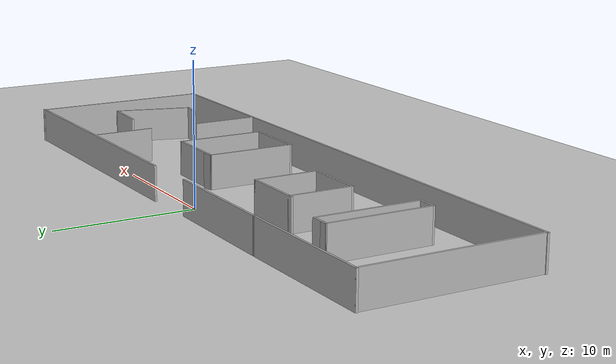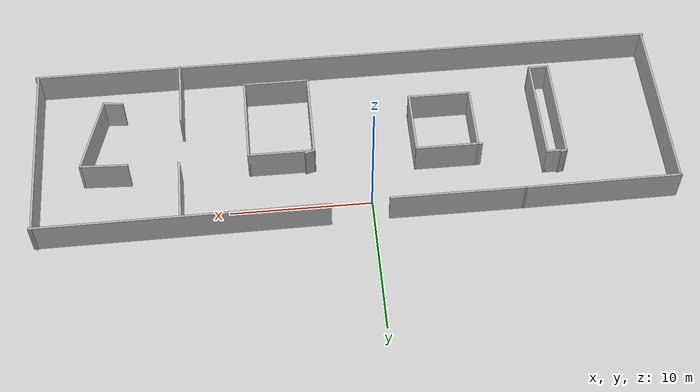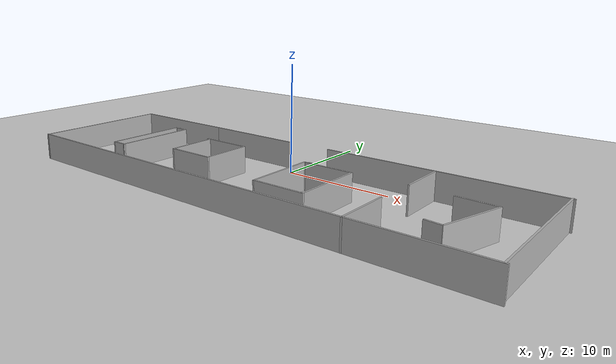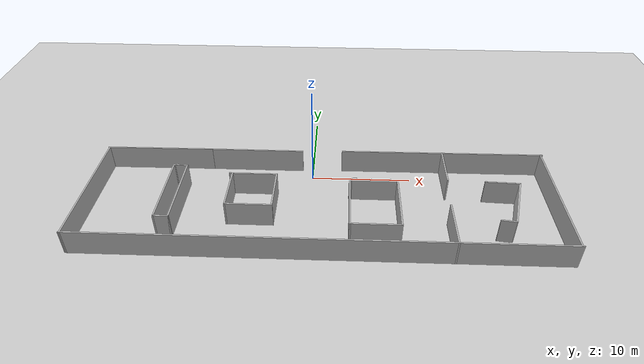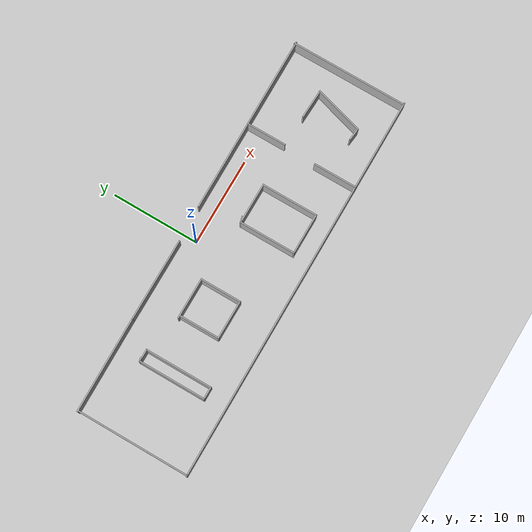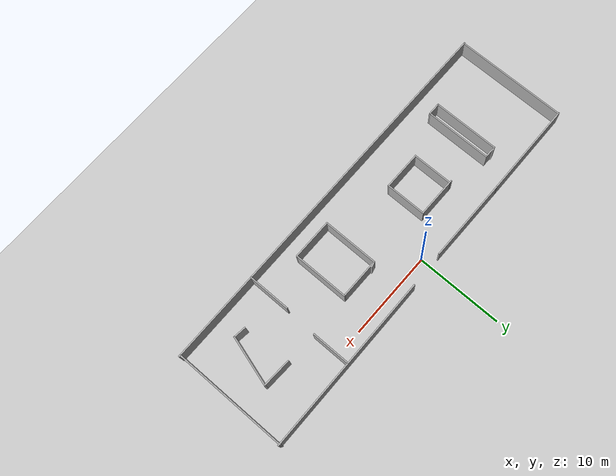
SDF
<?xml version="1.0"?>
<sdf version="1.7">
  <world name="default">
    <plugin
      filename="gz-sim-physics-system"
      name="gz::sim::systems::Physics">
    </plugin>
    <plugin
      filename="gz-sim-user-commands-system"
      name="gz::sim::systems::UserCommands">
    </plugin>
    <plugin
      filename="gz-sim-scene-broadcaster-system"
      name="gz::sim::systems::SceneBroadcaster">
    </plugin>
    <plugin
      filename="gz-sim-sensors-system"
      name="gz::sim::systems::Sensors">
      <render_engine>ogre2</render_engine>
    </plugin>
    <plugin
      filename="gz-sim-imu-system"
      name="gz::sim::systems::Imu">
    </plugin>

    <include>
      <uri>
        https://fuel.gazebosim.org/1.0/OpenRobotics/models/Ground Plane
      </uri>
    </include>

    <include>
      <uri>
        https://fuel.gazebosim.org/1.0/OpenRobotics/models/Sun
      </uri>
    </include>

    <scene>
      <shadows>false</shadows>
    </scene>

    <gui fullscreen='0'>
      <camera name='user_camera'>
        <pose frame=''>0.319654 -0.235002 9.29441 0 1.5138 0.009599</pose>
        <view_controller>orbit</view_controller>
        <projection_type>perspective</projection_type>
      </camera>
    </gui>

    <physics type="ode">
      <real_time_update_rate>1000.0</real_time_update_rate>
      <max_step_size>0.001</max_step_size>
      <real_time_factor>1</real_time_factor>
      <ode>
        <solver>
          <type>quick</type>
          <iters>150</iters>
          <precon_iters>0</precon_iters>
          <sor>1.400000</sor>
          <use_dynamic_moi_rescaling>1</use_dynamic_moi_rescaling>
        </solver>
        <constraints>
          <cfm>0.00001</cfm>
          <erp>0.2</erp>
          <contact_max_correcting_vel>2000.000000</contact_max_correcting_vel>
          <contact_surface_layer>0.01000</contact_surface_layer>
        </constraints>
      </ode>
    </physics>

    <model name='labrobotik'>
    <pose>1.05232 -4.98796 0 0 -0 0</pose>
    <link name='Wall_1'>
      <collision name='Wall_1_Collision'>
        <geometry>
          <box>
            <size>9.5 0.15 2.5</size>
          </box>
        </geometry>
        <pose>0 0 1.25 0 -0 0</pose>
      </collision>
      <visual name='Wall_1_Visual'>
        <pose>0 0 1.25 0 -0 0</pose>
        <geometry>
          <box>
            <size>9.5 0.15 2.5</size>
          </box>
        </geometry>
        <material>
         <diffuse>0.7 0.7 0.7 1</diffuse>
          <ambient>0.921569 0.807843 0.615686 1</ambient>
        </material>
        <meta>
          <layer>0</layer>
        </meta>
      </visual>
      <pose>-6.84284 6.28657 0 0 -0 0</pose>
    </link>
    <link name='Wall_10'>
      <collision name='Wall_10_Collision'>
        <geometry>
          <box>
            <size>4.75 0.15 2.5</size>
          </box>
        </geometry>
        <pose>0 0 1.25 0 -0 0</pose>
      </collision>
      <visual name='Wall_10_Visual'>
        <pose>0 0 1.25 0 -0 0</pose>
        <geometry>
          <box>
            <size>4.75 0.15 2.5</size>
          </box>
        </geometry>
        <material>
         <diffuse>0.7 0.7 0.7 1</diffuse>
          <ambient>0.921569 0.807843 0.615686 1</ambient>
        </material>
        <meta>
          <layer>0</layer>
        </meta>
      </visual>
      <pose>-4.42267 -0.012469 0 0 -0 -1.5708</pose>
    </link>
    <link name='Wall_11'>
      <collision name='Wall_11_Collision'>
        <geometry>
          <box>
            <size>4.5 0.15 2.5</size>
          </box>
        </geometry>
        <pose>0 0 1.25 0 -0 0</pose>
      </collision>
      <visual name='Wall_11_Visual'>
        <pose>0 0 1.25 0 -0 0</pose>
        <geometry>
          <box>
            <size>4.5 0.15 2.5</size>
          </box>
        </geometry>
        <material>
         <diffuse>0.7 0.7 0.7 1</diffuse>
          <ambient>0.921569 0.807843 0.615686 1</ambient>
        </material>
        <meta>
          <layer>0</layer>
        </meta>
      </visual>
      <pose>-6.59767 -2.31247 0 0 -0 3.14159</pose>
    </link>
    <link name='Wall_12'>
      <collision name='Wall_12_Collision'>
        <geometry>
          <box>
            <size>4.75 0.15 2.5</size>
          </box>
        </geometry>
        <pose>0 0 1.25 0 -0 0</pose>
      </collision>
      <visual name='Wall_12_Visual'>
        <pose>0 0 1.25 0 -0 0</pose>
        <geometry>
          <box>
            <size>4.75 0.15 2.5</size>
          </box>
        </geometry>
        <material>
         <diffuse>0.7 0.7 0.7 1</diffuse>
          <ambient>0.921569 0.807843 0.615686 1</ambient>
        </material>
        <meta>
          <layer>0</layer>
        </meta>
      </visual>
      <pose>-8.77267 -0.012469 0 0 -0 1.5708</pose>
    </link>
    <link name='Wall_14'>
      <collision name='Wall_14_Collision'>
        <geometry>
          <box>
            <size>4.5 0.15 2.5</size>
          </box>
        </geometry>
        <pose>0 0 1.25 0 -0 0</pose>
      </collision>
      <visual name='Wall_14_Visual'>
        <pose>0 0 1.25 0 -0 0</pose>
        <geometry>
          <box>
            <size>4.5 0.15 2.5</size>
          </box>
        </geometry>
        <material>
         <diffuse>0.7 0.7 0.7 1</diffuse>
          <ambient>0.921569 0.807843 0.615686 1</ambient>
        </material>
        <meta>
          <layer>0</layer>
        </meta>
      </visual>
      <pose>12.2126 4.25248 0 0 -0 -1.5708</pose>
    </link>
    <link name='Wall_16'>
      <collision name='Wall_16_Collision'>
        <geometry>
          <box>
            <size>5 0.15 2.5</size>
          </box>
        </geometry>
        <pose>0 0 1.25 0 -0 0</pose>
      </collision>
      <visual name='Wall_16_Visual'>
        <pose>0 0 1.25 0 -0 0</pose>
        <geometry>
          <box>
            <size>5 0.15 2.5</size>
          </box>
        </geometry>
        <material>
         <diffuse>0.7 0.7 0.7 1</diffuse>
          <ambient>0.921569 0.807843 0.615686 1</ambient>
        </material>
        <meta>
          <layer>0</layer>
        </meta>
      </visual>
      <pose>12.0003 -4.13458 0 0 -0 -1.5708</pose>
    </link>
    <link name='Wall_18'>
      <collision name='Wall_18_Collision'>
        <geometry>
          <box>
            <size>1.41824 0.15 2.5</size>
          </box>
        </geometry>
        <pose>0 0 1.25 0 -0 0</pose>
      </collision>
      <visual name='Wall_18_Visual'>
        <pose>0 0 1.25 0 -0 0</pose>
        <geometry>
          <box>
            <size>1.41824 0.15 2.5</size>
          </box>
        </geometry>
        <material>
         <diffuse>0.7 0.7 0.7 1</diffuse>
          <ambient>0.921569 0.807843 0.615686 1</ambient>
        </material>
        <meta>
          <layer>0</layer>
        </meta>
      </visual>
      <pose>16.8051 -3.62002 0 0 -0 -0.111816</pose>
    </link>
    <link name='Wall_19'>
      <collision name='Wall_19_Collision'>
        <geometry>
          <box>
            <size>5.82611 0.15 2.5</size>
          </box>
        </geometry>
        <pose>0 0 1.25 0 -0 0</pose>
      </collision>
      <visual name='Wall_19_Visual'>
        <pose>0 0 1.25 0 -0 0</pose>
        <geometry>
          <box>
            <size>5.82611 0.15 2.5</size>
          </box>
        </geometry>
        <material>
         <diffuse>0.7 0.7 0.7 1</diffuse>
          <ambient>0.921569 0.807843 0.615686 1</ambient>
        </material>
        <meta>
          <layer>0</layer>
        </meta>
      </visual>
      <pose>18.2843 -0.961535 0 0 -0 1.29299</pose>
    </link>
    <link name='Wall_20'>
      <collision name='Wall_20_Collision'>
        <geometry>
          <box>
            <size>3.32391 0.15 2.5</size>
          </box>
        </geometry>
        <pose>0 0 1.25 0 -0 0</pose>
      </collision>
      <visual name='Wall_20_Visual'>
        <pose>0 0 1.25 0 -0 0</pose>
        <geometry>
          <box>
            <size>3.32391 0.15 2.5</size>
          </box>
        </geometry>
        <material>
         <diffuse>0.7 0.7 0.7 1</diffuse>
          <ambient>0.921569 0.807843 0.615686 1</ambient>
        </material>
        <meta>
          <layer>0</layer>
        </meta>
      </visual>
      <pose>17.4065 1.83847 0 0 -0 3.09699</pose>
    </link>
    <link name='Wall_22'>
      <collision name='Wall_22_Collision'>
        <geometry>
          <box>
            <size>4.5 0.15 2.5</size>
          </box>
        </geometry>
        <pose>0 0 1.25 0 -0 0</pose>
      </collision>
      <visual name='Wall_22_Visual'>
        <pose>0 0 1.25 0 -0 0</pose>
        <geometry>
          <box>
            <size>4.5 0.15 2.5</size>
          </box>
        </geometry>
        <material>
         <diffuse>0.7 0.7 0.7 1</diffuse>
          <ambient>0.921569 0.807843 0.615686 1</ambient>
        </material>
        <meta>
          <layer>0</layer>
        </meta>
      </visual>
      <pose>5.18914 1.82827 0 0 -0 0</pose>
    </link>
    <link name='Wall_23'>
      <collision name='Wall_23_Collision'>
        <geometry>
          <box>
            <size>6.5 0.15 2.5</size>
          </box>
        </geometry>
        <pose>0 0 1.25 0 -0 0</pose>
      </collision>
      <visual name='Wall_23_Visual'>
        <pose>0 0 1.25 0 -0 0</pose>
        <geometry>
          <box>
            <size>6.5 0.15 2.5</size>
          </box>
        </geometry>
        <material>
         <diffuse>0.7 0.7 0.7 1</diffuse>
          <ambient>0.921569 0.807843 0.615686 1</ambient>
        </material>
        <meta>
          <layer>0</layer>
        </meta>
      </visual>
      <pose>7.36414 -1.34673 0 0 -0 -1.5708</pose>
    </link>
    <link name='Wall_24'>
      <collision name='Wall_24_Collision'>
        <geometry>
          <box>
            <size>4.75 0.15 2.5</size>
          </box>
        </geometry>
        <pose>0 0 1.25 0 -0 0</pose>
      </collision>
      <visual name='Wall_24_Visual'>
        <pose>0 0 1.25 0 -0 0</pose>
        <geometry>
          <box>
            <size>4.75 0.15 2.5</size>
          </box>
        </geometry>
        <material>
         <diffuse>0.7 0.7 0.7 1</diffuse>
          <ambient>0.921569 0.807843 0.615686 1</ambient>
        </material>
        <meta>
          <layer>0</layer>
        </meta>
      </visual>
      <pose>5.06414 -4.52173 0 0 -0 3.14159</pose>
    </link>
    <link name='Wall_25'>
      <collision name='Wall_25_Collision'>
        <geometry>
          <box>
            <size>6.5 0.15 2.5</size>
          </box>
        </geometry>
        <pose>0 0 1.25 0 -0 0</pose>
      </collision>
      <visual name='Wall_25_Visual'>
        <pose>0 0 1.25 0 -0 0</pose>
        <geometry>
          <box>
            <size>6.5 0.15 2.5</size>
          </box>
        </geometry>
        <material>
         <diffuse>0.7 0.7 0.7 1</diffuse>
          <ambient>0.921569 0.807843 0.615686 1</ambient>
        </material>
        <meta>
          <layer>0</layer>
        </meta>
      </visual>
      <pose>2.76414 -1.34673 0 0 -0 1.5708</pose>
    </link>
    <link name='Wall_26'>
      <collision name='Wall_26_Collision'>
        <geometry>
          <box>
            <size>0.75 0.15 2.5</size>
          </box>
        </geometry>
        <pose>0 0 1.25 0 -0 0</pose>
      </collision>
      <visual name='Wall_26_Visual'>
        <pose>0 0 1.25 0 -0 0</pose>
        <geometry>
          <box>
            <size>0.75 0.15 2.5</size>
          </box>
        </geometry>
        <material>
         <diffuse>0.7 0.7 0.7 1</diffuse>
          <ambient>0.921569 0.807843 0.615686 1</ambient>
        </material>
        <meta>
          <layer>0</layer>
        </meta>
      </visual>
      <pose>3.05391 1.90592 0 0 -0 0.261799</pose>
    </link>
    <link name='Wall_28'>
      <collision name='Wall_28_Collision'>
        <geometry>
          <box>
            <size>1.25 0.15 2.5</size>
          </box>
        </geometry>
        <pose>0 0 1.25 0 -0 0</pose>
      </collision>
      <visual name='Wall_28_Visual'>
        <pose>0 0 1.25 0 -0 0</pose>
        <geometry>
          <box>
            <size>1.25 0.15 2.5</size>
          </box>
        </geometry>
        <material>
         <diffuse>0.7 0.7 0.7 1</diffuse>
          <ambient>0.921569 0.807843 0.615686 1</ambient>
        </material>
        <meta>
          <layer>0</layer>
        </meta>
      </visual>
      <pose>-14.0544 3.38493 0 0 -0 0</pose>
    </link>
    <link name='Wall_29'>
      <collision name='Wall_29_Collision'>
        <geometry>
          <box>
            <size>7.75 0.15 2.5</size>
          </box>
        </geometry>
        <pose>0 0 1.25 0 -0 0</pose>
      </collision>
      <visual name='Wall_29_Visual'>
        <pose>0 0 1.25 0 -0 0</pose>
        <geometry>
          <box>
            <size>7.75 0.15 2.5</size>
          </box>
        </geometry>
        <material>
         <diffuse>0.7 0.7 0.7 1</diffuse>
          <ambient>0.921569 0.807843 0.615686 1</ambient>
        </material>
        <meta>
          <layer>0</layer>
        </meta>
      </visual>
      <pose>-13.5044 -0.415073 0 0 -0 -1.5708</pose>
    </link>
    <link name='Wall_3'>
      <collision name='Wall_3_Collision'>
        <geometry>
          <box>
            <size>20.5477 0.15 2.5</size>
          </box>
        </geometry>
        <pose>0 0 1.25 0 -0 0</pose>
      </collision>
      <visual name='Wall_3_Visual'>
        <pose>0 0 1.25 0 -0 0</pose>
        <geometry>
          <box>
            <size>20.5477 0.15 2.5</size>
          </box>
        </geometry>
        <material>
         <diffuse>0.7 0.7 0.7 1</diffuse>
          <ambient>0.921569 0.807843 0.615686 1</ambient>
        </material>
        <meta>
          <layer>0</layer>
        </meta>
      </visual>
      <pose>12.2006 6.51474 0 0 -0 0.006938</pose>
    </link>
    <link name='Wall_30'>
      <collision name='Wall_30_Collision'>
        <geometry>
          <box>
            <size>1.5 0.15 2.5</size>
          </box>
        </geometry>
        <pose>0 0 1.25 0 -0 0</pose>
      </collision>
      <visual name='Wall_30_Visual'>
        <pose>0 0 1.25 0 -0 0</pose>
        <geometry>
          <box>
            <size>1.5 0.15 2.5</size>
          </box>
        </geometry>
        <material>
         <diffuse>0.7 0.7 0.7 1</diffuse>
          <ambient>0.921569 0.807843 0.615686 1</ambient>
        </material>
        <meta>
          <layer>0</layer>
        </meta>
      </visual>
      <pose>-14.1794 -4.21507 0 0 -0 3.14159</pose>
    </link>
    <link name='Wall_31'>
      <collision name='Wall_31_Collision'>
        <geometry>
          <box>
            <size>7.75 0.15 2.5</size>
          </box>
        </geometry>
        <pose>0 0 1.25 0 -0 0</pose>
      </collision>
      <visual name='Wall_31_Visual'>
        <pose>0 0 1.25 0 -0 0</pose>
        <geometry>
          <box>
            <size>7.75 0.15 2.5</size>
          </box>
        </geometry>
        <material>
         <diffuse>0.7 0.7 0.7 1</diffuse>
          <ambient>0.921569 0.807843 0.615686 1</ambient>
        </material>
        <meta>
          <layer>0</layer>
        </meta>
      </visual>
      <pose>-14.8544 -0.415073 0 0 -0 1.5708</pose>
    </link>
    <link name='Wall_32'>
      <collision name='Wall_32_Collision'>
        <geometry>
          <box>
            <size>0.5 0.15 2.5</size>
          </box>
        </geometry>
        <pose>0 0 1.25 0 -0 0</pose>
      </collision>
      <visual name='Wall_32_Visual'>
        <pose>0 0 1.25 0 -0 0</pose>
        <geometry>
          <box>
            <size>0.5 0.15 2.5</size>
          </box>
        </geometry>
        <material>
         <diffuse>0.7 0.7 0.7 1</diffuse>
          <ambient>0.921569 0.807843 0.615686 1</ambient>
        </material>
        <meta>
          <layer>0</layer>
        </meta>
      </visual>
      <pose>-14.6853 3.43022 0 0 -0 0.261799</pose>
    </link>
    <link name='Wall_4'>
      <collision name='Wall_4_Collision'>
        <geometry>
          <box>
            <size>13.25 0.15 2.5</size>
          </box>
        </geometry>
        <pose>0 0 1.25 0 -0 0</pose>
      </collision>
      <visual name='Wall_4_Visual'>
        <pose>0 0 1.25 0 -0 0</pose>
        <geometry>
          <box>
            <size>13.25 0.15 2.5</size>
          </box>
        </geometry>
        <material>
         <diffuse>0.7 0.7 0.7 1</diffuse>
          <ambient>0.921569 0.807843 0.615686 1</ambient>
        </material>
        <meta>
          <layer>0</layer>
        </meta>
      </visual>
      <pose>22.2577 0.106253 0 0 -0 -1.5708</pose>
    </link>
    <link name='Wall_5'>
      <collision name='Wall_5_Collision'>
        <geometry>
          <box>
            <size>44.9488 0.15 2.5</size>
          </box>
        </geometry>
        <pose>0 0 1.25 0 -0 0</pose>
      </collision>
      <visual name='Wall_5_Visual'>
        <pose>0 0 1.25 0 -0 0</pose>
        <geometry>
          <box>
            <size>44.9488 0.15 2.5</size>
          </box>
        </geometry>
        <material>
         <diffuse>0.7 0.7 0.7 1</diffuse>
          <ambient>0.921569 0.807843 0.615686 1</ambient>
        </material>
        <meta>
          <layer>0</layer>
        </meta>
      </visual>
      <pose>-3.5e-05 -6.58526 0 0 -0 -3.13843</pose>
    </link>
    <link name='Wall_6'>
      <collision name='Wall_6_Collision'>
        <geometry>
          <box>
            <size>13 0.15 2.5</size>
          </box>
        </geometry>
        <pose>0 0 1.25 0 -0 0</pose>
      </collision>
      <visual name='Wall_6_Visual'>
        <pose>0 0 1.25 0 -0 0</pose>
        <geometry>
          <box>
            <size>13 0.15 2.5</size>
          </box>
        </geometry>
        <material>
         <diffuse>0.7 0.7 0.7 1</diffuse>
          <ambient>0.921569 0.807843 0.615686 1</ambient>
        </material>
        <meta>
          <layer>0</layer>
        </meta>
      </visual>
      <pose>-22.3285 -0.231018 0 0 -0 1.5708</pose>
    </link>
    <link name='Wall_7'>
      <collision name='Wall_7_Collision'>
        <geometry>
          <box>
            <size>11.0315 0.15 2.5</size>
          </box>
        </geometry>
        <pose>0 0 1.25 0 -0 0</pose>
      </collision>
      <visual name='Wall_7_Visual'>
        <pose>0 0 1.25 0 -0 0</pose>
        <geometry>
          <box>
            <size>11.0315 0.15 2.5</size>
          </box>
        </geometry>
        <material>
         <diffuse>0.7 0.7 0.7 1</diffuse>
          <ambient>0.921569 0.807843 0.615686 1</ambient>
        </material>
        <meta>
          <layer>0</layer>
        </meta>
      </visual>
      <pose>-16.9586 6.24028 0 0 -0 0.008509</pose>
    </link>
    <link name='Wall_9'>
      <collision name='Wall_9_Collision'>
        <geometry>
          <box>
            <size>4.75 0.15 2.5</size>
          </box>
        </geometry>
        <pose>0 0 1.25 0 -0 0</pose>
      </collision>
      <visual name='Wall_9_Visual'>
        <pose>0 0 1.25 0 -0 0</pose>
        <geometry>
          <box>
            <size>4.75 0.15 2.5</size>
          </box>
        </geometry>
        <material>
         <diffuse>0.7 0.7 0.7 1</diffuse>
          <ambient>0.921569 0.807843 0.615686 1</ambient>
        </material>
        <meta>
          <layer>0</layer>
        </meta>
      </visual>
      <pose>-6.72267 2.28753 0 0 -0 0</pose>
    </link>
    <static>1</static>
  </model>
  </world>
</sdf>
